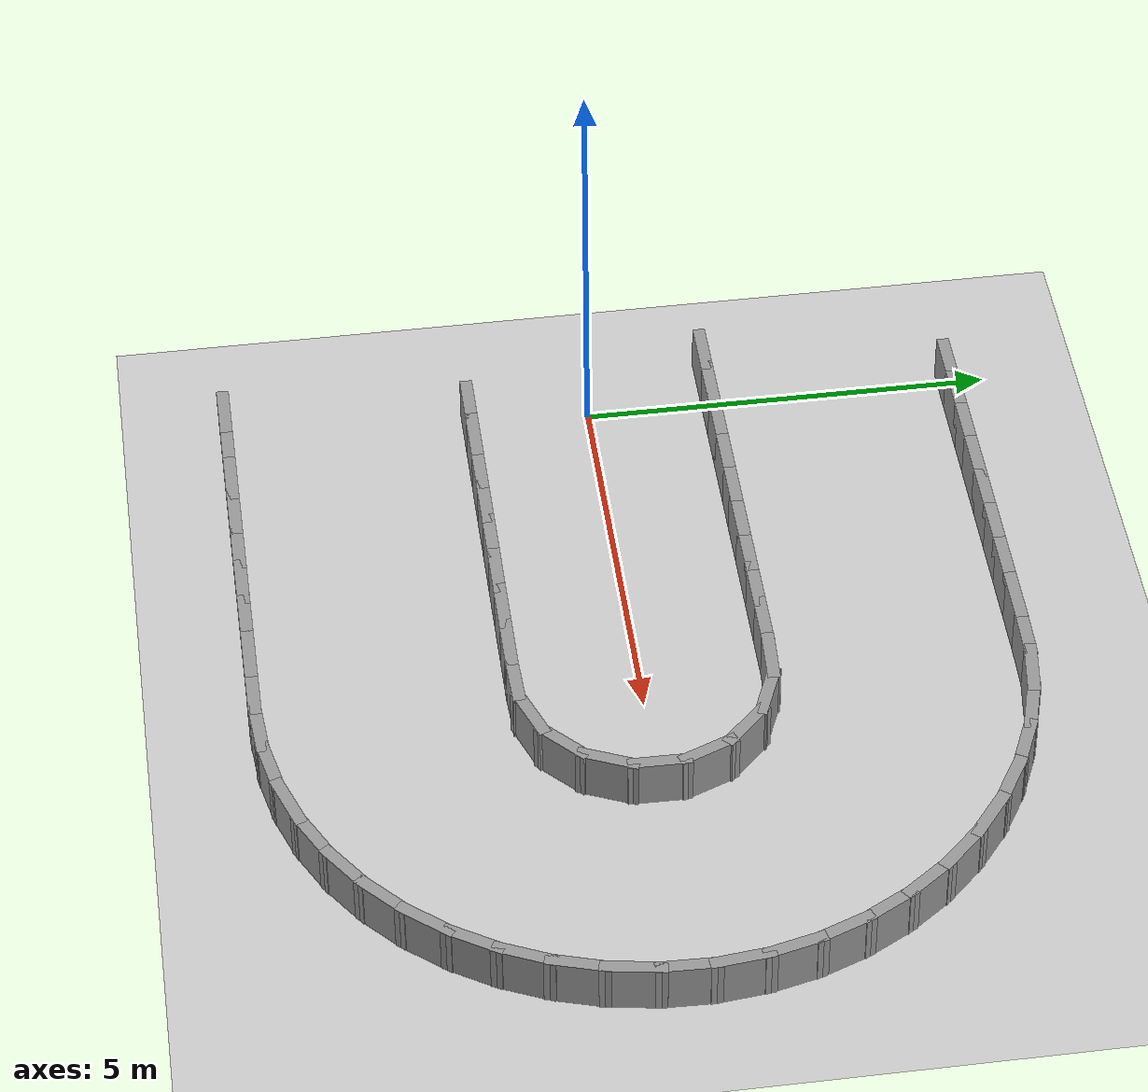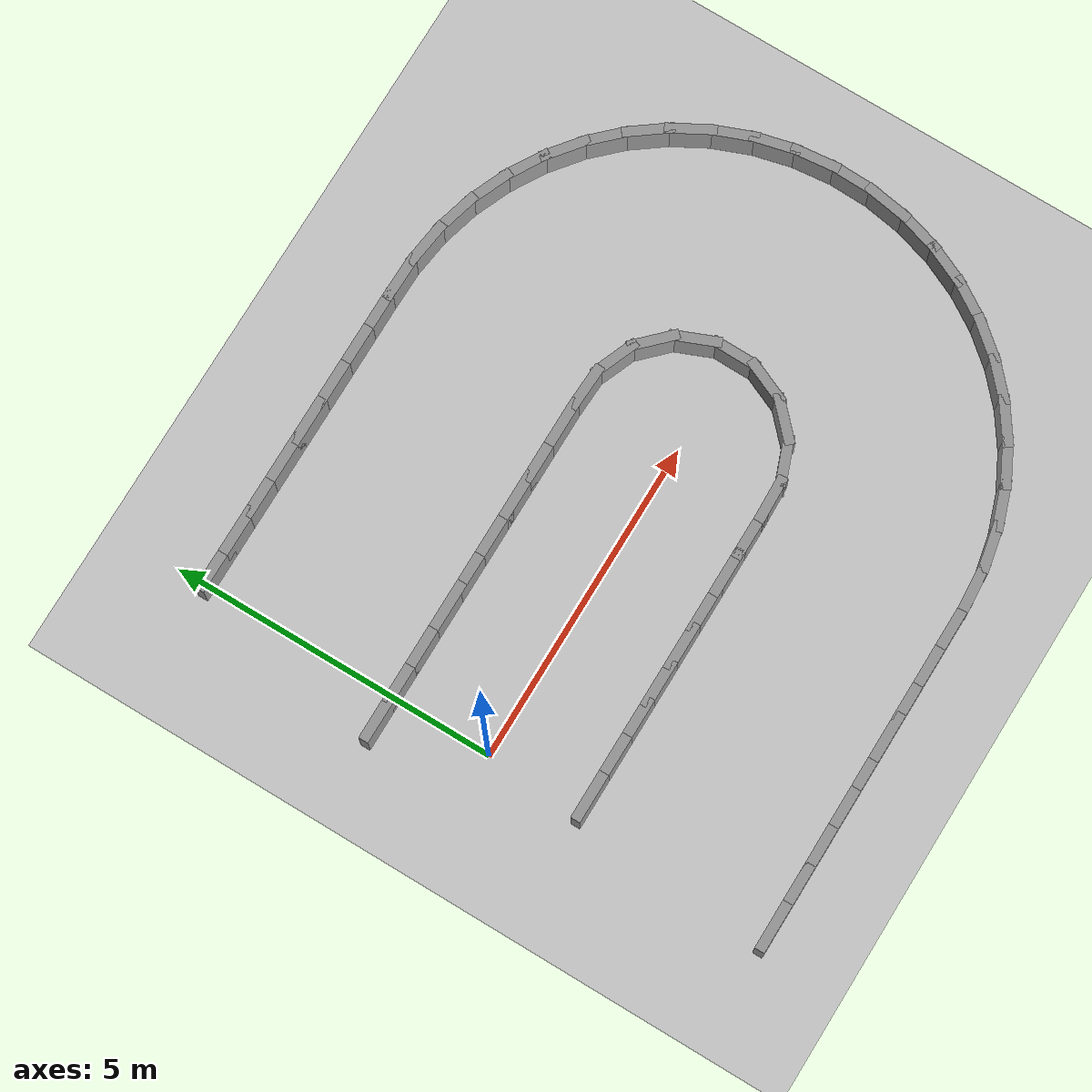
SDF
<sdf version="1.7">
 <world name="default">
  <model name="ground_plane">
   <static>1</static>
   <link name="link">
    <collision name="collision">
     <geometry><plane><normal>0 0 1</normal><size>100 100</size></plane></geometry>
     <surface><friction><ode><mu>100</mu><mu2>50</mu2></ode></friction></surface>
    </collision>
    <visual name="visual">
     <cast_shadows>0</cast_shadows>
     <geometry><plane><normal>0 0 1</normal><size>100 100</size></plane></geometry>
     <material>
      <script><uri>file://media/materials/scripts/gazebo.material</uri><name>Gazebo/Grey</name></script>
     </material>
    </visual>
   </link>
  </model>
  <model name="hairpin_safe">
   <link name="Wall_16">
    <collision name="Wall_16_Collision">
     <geometry><box><size>0.7500 0.1500 0.6000</size></box></geometry>
     <pose>0 0 0.3000 0 -0 0</pose>
    </collision>
    <visual name="Wall_16_Visual">
     <pose>0 0 0.3000 0 -0 0</pose>
     <geometry><box><size>0.7500 0.1500 0.6000</size></box></geometry>
     <material>
      <script><uri>file://media/materials/scripts/gazebo.material</uri><name>Gazebo/Grey</name></script>
      <ambient>1 1 1 1</ambient>
     </material>
    </visual>
    <pose>0.2000 4.5000 0 0 -0 0.00000</pose>
   </link>
   <link name="Wall_17">
    <collision name="Wall_17_Collision">
     <geometry><box><size>0.7500 0.1500 0.6000</size></box></geometry>
     <pose>0 0 0.3000 0 -0 0</pose>
    </collision>
    <visual name="Wall_17_Visual">
     <pose>0 0 0.3000 0 -0 0</pose>
     <geometry><box><size>0.7500 0.1500 0.6000</size></box></geometry>
     <material>
      <script><uri>file://media/materials/scripts/gazebo.material</uri><name>Gazebo/Grey</name></script>
      <ambient>1 1 1 1</ambient>
     </material>
    </visual>
    <pose>0.8000 4.5000 0 0 -0 0.00000</pose>
   </link>
   <link name="Wall_18">
    <collision name="Wall_18_Collision">
     <geometry><box><size>0.7500 0.1500 0.6000</size></box></geometry>
     <pose>0 0 0.3000 0 -0 0</pose>
    </collision>
    <visual name="Wall_18_Visual">
     <pose>0 0 0.3000 0 -0 0</pose>
     <geometry><box><size>0.7500 0.1500 0.6000</size></box></geometry>
     <material>
      <script><uri>file://media/materials/scripts/gazebo.material</uri><name>Gazebo/Grey</name></script>
      <ambient>1 1 1 1</ambient>
     </material>
    </visual>
    <pose>1.4000 4.5000 0 0 -0 0.00000</pose>
   </link>
   <link name="Wall_19">
    <collision name="Wall_19_Collision">
     <geometry><box><size>0.7500 0.1500 0.6000</size></box></geometry>
     <pose>0 0 0.3000 0 -0 0</pose>
    </collision>
    <visual name="Wall_19_Visual">
     <pose>0 0 0.3000 0 -0 0</pose>
     <geometry><box><size>0.7500 0.1500 0.6000</size></box></geometry>
     <material>
      <script><uri>file://media/materials/scripts/gazebo.material</uri><name>Gazebo/Grey</name></script>
      <ambient>1 1 1 1</ambient>
     </material>
    </visual>
    <pose>2.0000 4.5000 0 0 -0 0.00000</pose>
   </link>
   <link name="Wall_20">
    <collision name="Wall_20_Collision">
     <geometry><box><size>0.7500 0.1500 0.6000</size></box></geometry>
     <pose>0 0 0.3000 0 -0 0</pose>
    </collision>
    <visual name="Wall_20_Visual">
     <pose>0 0 0.3000 0 -0 0</pose>
     <geometry><box><size>0.7500 0.1500 0.6000</size></box></geometry>
     <material>
      <script><uri>file://media/materials/scripts/gazebo.material</uri><name>Gazebo/Grey</name></script>
      <ambient>1 1 1 1</ambient>
     </material>
    </visual>
    <pose>2.6000 4.5000 0 0 -0 0.00000</pose>
   </link>
   <link name="Wall_21">
    <collision name="Wall_21_Collision">
     <geometry><box><size>0.7500 0.1500 0.6000</size></box></geometry>
     <pose>0 0 0.3000 0 -0 0</pose>
    </collision>
    <visual name="Wall_21_Visual">
     <pose>0 0 0.3000 0 -0 0</pose>
     <geometry><box><size>0.7500 0.1500 0.6000</size></box></geometry>
     <material>
      <script><uri>file://media/materials/scripts/gazebo.material</uri><name>Gazebo/Grey</name></script>
      <ambient>1 1 1 1</ambient>
     </material>
    </visual>
    <pose>3.2000 4.5000 0 0 -0 0.00000</pose>
   </link>
   <link name="Wall_22">
    <collision name="Wall_22_Collision">
     <geometry><box><size>0.7500 0.1500 0.6000</size></box></geometry>
     <pose>0 0 0.3000 0 -0 0</pose>
    </collision>
    <visual name="Wall_22_Visual">
     <pose>0 0 0.3000 0 -0 0</pose>
     <geometry><box><size>0.7500 0.1500 0.6000</size></box></geometry>
     <material>
      <script><uri>file://media/materials/scripts/gazebo.material</uri><name>Gazebo/Grey</name></script>
      <ambient>1 1 1 1</ambient>
     </material>
    </visual>
    <pose>3.8000 4.5000 0 0 -0 0.00000</pose>
   </link>
   <link name="Wall_23">
    <collision name="Wall_23_Collision">
     <geometry><box><size>0.7500 0.1500 0.6000</size></box></geometry>
     <pose>0 0 0.3000 0 -0 0</pose>
    </collision>
    <visual name="Wall_23_Visual">
     <pose>0 0 0.3000 0 -0 0</pose>
     <geometry><box><size>0.7500 0.1500 0.6000</size></box></geometry>
     <material>
      <script><uri>file://media/materials/scripts/gazebo.material</uri><name>Gazebo/Grey</name></script>
      <ambient>1 1 1 1</ambient>
     </material>
    </visual>
    <pose>4.4000 4.5000 0 0 -0 0.00000</pose>
   </link>
   <link name="Wall_24">
    <collision name="Wall_24_Collision">
     <geometry><box><size>0.7499 0.1500 0.6000</size></box></geometry>
     <pose>0 0 0.3000 0 -0 0</pose>
    </collision>
    <visual name="Wall_24_Visual">
     <pose>0 0 0.3000 0 -0 0</pose>
     <geometry><box><size>0.7499 0.1500 0.6000</size></box></geometry>
     <material>
      <script><uri>file://media/materials/scripts/gazebo.material</uri><name>Gazebo/Grey</name></script>
      <ambient>1 1 1 1</ambient>
     </material>
    </visual>
    <pose>4.9999 4.4950 0 0 -0 -0.01683</pose>
   </link>
   <link name="Wall_25">
    <collision name="Wall_25_Collision">
     <geometry><box><size>0.7495 0.1500 0.6000</size></box></geometry>
     <pose>0 0 0.3000 0 -0 0</pose>
    </collision>
    <visual name="Wall_25_Visual">
     <pose>0 0 0.3000 0 -0 0</pose>
     <geometry><box><size>0.7495 0.1500 0.6000</size></box></geometry>
     <material>
      <script><uri>file://media/materials/scripts/gazebo.material</uri><name>Gazebo/Grey</name></script>
      <ambient>1 1 1 1</ambient>
     </material>
    </visual>
    <pose>5.5969 4.4500 0 0 -0 -0.13338</pose>
   </link>
   <link name="Wall_26">
    <collision name="Wall_26_Collision">
     <geometry><box><size>0.7495 0.1500 0.6000</size></box></geometry>
     <pose>0 0 0.3000 0 -0 0</pose>
    </collision>
    <visual name="Wall_26_Visual">
     <pose>0 0 0.3000 0 -0 0</pose>
     <geometry><box><size>0.7495 0.1500 0.6000</size></box></geometry>
     <material>
      <script><uri>file://media/materials/scripts/gazebo.material</uri><name>Gazebo/Grey</name></script>
      <ambient>1 1 1 1</ambient>
     </material>
    </visual>
    <pose>6.1832 4.3312 0 0 -0 -0.26656</pose>
   </link>
   <link name="Wall_27">
    <collision name="Wall_27_Collision">
     <geometry><box><size>0.7495 0.1500 0.6000</size></box></geometry>
     <pose>0 0 0.3000 0 -0 0</pose>
    </collision>
    <visual name="Wall_27_Visual">
     <pose>0 0 0.3000 0 -0 0</pose>
     <geometry><box><size>0.7495 0.1500 0.6000</size></box></geometry>
     <material>
      <script><uri>file://media/materials/scripts/gazebo.material</uri><name>Gazebo/Grey</name></script>
      <ambient>1 1 1 1</ambient>
     </material>
    </visual>
    <pose>6.7485 4.1355 0 0 -0 -0.40014</pose>
   </link>
   <link name="Wall_28">
    <collision name="Wall_28_Collision">
     <geometry><box><size>0.7496 0.1500 0.6000</size></box></geometry>
     <pose>0 0 0.3000 0 -0 0</pose>
    </collision>
    <visual name="Wall_28_Visual">
     <pose>0 0 0.3000 0 -0 0</pose>
     <geometry><box><size>0.7496 0.1500 0.6000</size></box></geometry>
     <material>
      <script><uri>file://media/materials/scripts/gazebo.material</uri><name>Gazebo/Grey</name></script>
      <ambient>1 1 1 1</ambient>
     </material>
    </visual>
    <pose>7.2827 3.8663 0 0 -0 -0.53312</pose>
   </link>
   <link name="Wall_29">
    <collision name="Wall_29_Collision">
     <geometry><box><size>0.7496 0.1500 0.6000</size></box></geometry>
     <pose>0 0 0.3000 0 -0 0</pose>
    </collision>
    <visual name="Wall_29_Visual">
     <pose>0 0 0.3000 0 -0 0</pose>
     <geometry><box><size>0.7496 0.1500 0.6000</size></box></geometry>
     <material>
      <script><uri>file://media/materials/scripts/gazebo.material</uri><name>Gazebo/Grey</name></script>
      <ambient>1 1 1 1</ambient>
     </material>
    </visual>
    <pose>7.7765 3.5286 0 0 -0 -0.66690</pose>
   </link>
   <link name="Wall_30">
    <collision name="Wall_30_Collision">
     <geometry><box><size>0.7495 0.1500 0.6000</size></box></geometry>
     <pose>0 0 0.3000 0 -0 0</pose>
    </collision>
    <visual name="Wall_30_Visual">
     <pose>0 0 0.3000 0 -0 0</pose>
     <geometry><box><size>0.7495 0.1500 0.6000</size></box></geometry>
     <material>
      <script><uri>file://media/materials/scripts/gazebo.material</uri><name>Gazebo/Grey</name></script>
      <ambient>1 1 1 1</ambient>
     </material>
    </visual>
    <pose>8.2209 3.1281 0 0 -0 -0.79986</pose>
   </link>
   <link name="Wall_31">
    <collision name="Wall_31_Collision">
     <geometry><box><size>0.7495 0.1500 0.6000</size></box></geometry>
     <pose>0 0 0.3000 0 -0 0</pose>
    </collision>
    <visual name="Wall_31_Visual">
     <pose>0 0 0.3000 0 -0 0</pose>
     <geometry><box><size>0.7495 0.1500 0.6000</size></box></geometry>
     <material>
      <script><uri>file://media/materials/scripts/gazebo.material</uri><name>Gazebo/Grey</name></script>
      <ambient>1 1 1 1</ambient>
     </material>
    </visual>
    <pose>8.6082 2.6722 0 0 -0 -0.93347</pose>
   </link>
   <link name="Wall_32">
    <collision name="Wall_32_Collision">
     <geometry><box><size>0.7495 0.1500 0.6000</size></box></geometry>
     <pose>0 0 0.3000 0 -0 0</pose>
    </collision>
    <visual name="Wall_32_Visual">
     <pose>0 0 0.3000 0 -0 0</pose>
     <geometry><box><size>0.7495 0.1500 0.6000</size></box></geometry>
     <material>
      <script><uri>file://media/materials/scripts/gazebo.material</uri><name>Gazebo/Grey</name></script>
      <ambient>1 1 1 1</ambient>
     </material>
    </visual>
    <pose>8.9314 2.1688 0 0 -0 -1.06662</pose>
   </link>
   <link name="Wall_33">
    <collision name="Wall_33_Collision">
     <geometry><box><size>0.7495 0.1500 0.6000</size></box></geometry>
     <pose>0 0 0.3000 0 -0 0</pose>
    </collision>
    <visual name="Wall_33_Visual">
     <pose>0 0 0.3000 0 -0 0</pose>
     <geometry><box><size>0.7495 0.1500 0.6000</size></box></geometry>
     <material>
      <script><uri>file://media/materials/scripts/gazebo.material</uri><name>Gazebo/Grey</name></script>
      <ambient>1 1 1 1</ambient>
     </material>
    </visual>
    <pose>9.1848 1.6269 0 0 -0 -1.20003</pose>
   </link>
   <link name="Wall_34">
    <collision name="Wall_34_Collision">
     <geometry><box><size>0.7495 0.1500 0.6000</size></box></geometry>
     <pose>0 0 0.3000 0 -0 0</pose>
    </collision>
    <visual name="Wall_34_Visual">
     <pose>0 0 0.3000 0 -0 0</pose>
     <geometry><box><size>0.7495 0.1500 0.6000</size></box></geometry>
     <material>
      <script><uri>file://media/materials/scripts/gazebo.material</uri><name>Gazebo/Grey</name></script>
      <ambient>1 1 1 1</ambient>
     </material>
    </visual>
    <pose>9.3639 1.0561 0 0 -0 -1.33338</pose>
   </link>
   <link name="Wall_35">
    <collision name="Wall_35_Collision">
     <geometry><box><size>0.7495 0.1500 0.6000</size></box></geometry>
     <pose>0 0 0.3000 0 -0 0</pose>
    </collision>
    <visual name="Wall_35_Visual">
     <pose>0 0 0.3000 0 -0 0</pose>
     <geometry><box><size>0.7495 0.1500 0.6000</size></box></geometry>
     <material>
      <script><uri>file://media/materials/scripts/gazebo.material</uri><name>Gazebo/Grey</name></script>
      <ambient>1 1 1 1</ambient>
     </material>
    </visual>
    <pose>9.4656 0.4666 0 0 -0 -1.46658</pose>
   </link>
   <link name="Wall_36">
    <collision name="Wall_36_Collision">
     <geometry><box><size>0.7495 0.1500 0.6000</size></box></geometry>
     <pose>0 0 0.3000 0 -0 0</pose>
    </collision>
    <visual name="Wall_36_Visual">
     <pose>0 0 0.3000 0 -0 0</pose>
     <geometry><box><size>0.7495 0.1500 0.6000</size></box></geometry>
     <material>
      <script><uri>file://media/materials/scripts/gazebo.material</uri><name>Gazebo/Grey</name></script>
      <ambient>1 1 1 1</ambient>
     </material>
    </visual>
    <pose>9.4880 -0.1312 0 0 -0 -1.60014</pose>
   </link>
   <link name="Wall_37">
    <collision name="Wall_37_Collision">
     <geometry><box><size>0.7496 0.1500 0.6000</size></box></geometry>
     <pose>0 0 0.3000 0 -0 0</pose>
    </collision>
    <visual name="Wall_37_Visual">
     <pose>0 0 0.3000 0 -0 0</pose>
     <geometry><box><size>0.7496 0.1500 0.6000</size></box></geometry>
     <material>
      <script><uri>file://media/materials/scripts/gazebo.material</uri><name>Gazebo/Grey</name></script>
      <ambient>1 1 1 1</ambient>
     </material>
    </visual>
    <pose>9.4307 -0.7267 0 0 -0 -1.73314</pose>
   </link>
   <link name="Wall_38">
    <collision name="Wall_38_Collision">
     <geometry><box><size>0.7496 0.1500 0.6000</size></box></geometry>
     <pose>0 0 0.3000 0 -0 0</pose>
    </collision>
    <visual name="Wall_38_Visual">
     <pose>0 0 0.3000 0 -0 0</pose>
     <geometry><box><size>0.7496 0.1500 0.6000</size></box></geometry>
     <material>
      <script><uri>file://media/materials/scripts/gazebo.material</uri><name>Gazebo/Grey</name></script>
      <ambient>1 1 1 1</ambient>
     </material>
    </visual>
    <pose>9.2948 -1.3092 0 0 -0 -1.86690</pose>
   </link>
   <link name="Wall_39">
    <collision name="Wall_39_Collision">
     <geometry><box><size>0.7495 0.1500 0.6000</size></box></geometry>
     <pose>0 0 0.3000 0 -0 0</pose>
    </collision>
    <visual name="Wall_39_Visual">
     <pose>0 0 0.3000 0 -0 0</pose>
     <geometry><box><size>0.7495 0.1500 0.6000</size></box></geometry>
     <material>
      <script><uri>file://media/materials/scripts/gazebo.material</uri><name>Gazebo/Grey</name></script>
      <ambient>1 1 1 1</ambient>
     </material>
    </visual>
    <pose>9.0826 -1.8686 0 0 -0 -1.99986</pose>
   </link>
   <link name="Wall_40">
    <collision name="Wall_40_Collision">
     <geometry><box><size>0.7495 0.1500 0.6000</size></box></geometry>
     <pose>0 0 0.3000 0 -0 0</pose>
    </collision>
    <visual name="Wall_40_Visual">
     <pose>0 0 0.3000 0 -0 0</pose>
     <geometry><box><size>0.7495 0.1500 0.6000</size></box></geometry>
     <material>
      <script><uri>file://media/materials/scripts/gazebo.material</uri><name>Gazebo/Grey</name></script>
      <ambient>1 1 1 1</ambient>
     </material>
    </visual>
    <pose>8.7980 -2.3947 0 0 -0 -2.13349</pose>
   </link>
   <link name="Wall_41">
    <collision name="Wall_41_Collision">
     <geometry><box><size>0.7495 0.1500 0.6000</size></box></geometry>
     <pose>0 0 0.3000 0 -0 0</pose>
    </collision>
    <visual name="Wall_41_Visual">
     <pose>0 0 0.3000 0 -0 0</pose>
     <geometry><box><size>0.7495 0.1500 0.6000</size></box></geometry>
     <material>
      <script><uri>file://media/materials/scripts/gazebo.material</uri><name>Gazebo/Grey</name></script>
      <ambient>1 1 1 1</ambient>
     </material>
    </visual>
    <pose>8.4459 -2.8783 0 0 -0 -2.26662</pose>
   </link>
   <link name="Wall_42">
    <collision name="Wall_42_Collision">
     <geometry><box><size>0.7495 0.1500 0.6000</size></box></geometry>
     <pose>0 0 0.3000 0 -0 0</pose>
    </collision>
    <visual name="Wall_42_Visual">
     <pose>0 0 0.3000 0 -0 0</pose>
     <geometry><box><size>0.7495 0.1500 0.6000</size></box></geometry>
     <material>
      <script><uri>file://media/materials/scripts/gazebo.material</uri><name>Gazebo/Grey</name></script>
      <ambient>1 1 1 1</ambient>
     </material>
    </visual>
    <pose>8.0327 -3.3109 0 0 -0 -2.40005</pose>
   </link>
   <link name="Wall_43">
    <collision name="Wall_43_Collision">
     <geometry><box><size>0.7495 0.1500 0.6000</size></box></geometry>
     <pose>0 0 0.3000 0 -0 0</pose>
    </collision>
    <visual name="Wall_43_Visual">
     <pose>0 0 0.3000 0 -0 0</pose>
     <geometry><box><size>0.7495 0.1500 0.6000</size></box></geometry>
     <material>
      <script><uri>file://media/materials/scripts/gazebo.material</uri><name>Gazebo/Grey</name></script>
      <ambient>1 1 1 1</ambient>
     </material>
    </visual>
    <pose>7.5656 -3.6847 0 0 -0 -2.53338</pose>
   </link>
   <link name="Wall_44">
    <collision name="Wall_44_Collision">
     <geometry><box><size>0.7495 0.1500 0.6000</size></box></geometry>
     <pose>0 0 0.3000 0 -0 0</pose>
    </collision>
    <visual name="Wall_44_Visual">
     <pose>0 0 0.3000 0 -0 0</pose>
     <geometry><box><size>0.7495 0.1500 0.6000</size></box></geometry>
     <material>
      <script><uri>file://media/materials/scripts/gazebo.material</uri><name>Gazebo/Grey</name></script>
      <ambient>1 1 1 1</ambient>
     </material>
    </visual>
    <pose>7.0530 -3.9931 0 0 -0 -2.66661</pose>
   </link>
   <link name="Wall_45">
    <collision name="Wall_45_Collision">
     <geometry><box><size>0.7495 0.1500 0.6000</size></box></geometry>
     <pose>0 0 0.3000 0 -0 0</pose>
    </collision>
    <visual name="Wall_45_Visual">
     <pose>0 0 0.3000 0 -0 0</pose>
     <geometry><box><size>0.7495 0.1500 0.6000</size></box></geometry>
     <material>
      <script><uri>file://media/materials/scripts/gazebo.material</uri><name>Gazebo/Grey</name></script>
      <ambient>1 1 1 1</ambient>
     </material>
    </visual>
    <pose>6.5039 -4.2305 0 0 -0 -2.80014</pose>
   </link>
   <link name="Wall_46">
    <collision name="Wall_46_Collision">
     <geometry><box><size>0.7496 0.1500 0.6000</size></box></geometry>
     <pose>0 0 0.3000 0 -0 0</pose>
    </collision>
    <visual name="Wall_46_Visual">
     <pose>0 0 0.3000 0 -0 0</pose>
     <geometry><box><size>0.7496 0.1500 0.6000</size></box></geometry>
     <material>
      <script><uri>file://media/materials/scripts/gazebo.material</uri><name>Gazebo/Grey</name></script>
      <ambient>1 1 1 1</ambient>
     </material>
    </visual>
    <pose>5.9282 -4.3929 0 0 -0 -2.93317</pose>
   </link>
   <link name="Wall_47">
    <collision name="Wall_47_Collision">
     <geometry><box><size>0.7496 0.1500 0.6000</size></box></geometry>
     <pose>0 0 0.3000 0 -0 0</pose>
    </collision>
    <visual name="Wall_47_Visual">
     <pose>0 0 0.3000 0 -0 0</pose>
     <geometry><box><size>0.7496 0.1500 0.6000</size></box></geometry>
     <material>
      <script><uri>file://media/materials/scripts/gazebo.material</uri><name>Gazebo/Grey</name></script>
      <ambient>1 1 1 1</ambient>
     </material>
    </visual>
    <pose>5.3360 -4.4774 0 0 -0 -3.06686</pose>
   </link>
   <link name="Wall_48">
    <collision name="Wall_48_Collision">
     <geometry><box><size>0.7500 0.1500 0.6000</size></box></geometry>
     <pose>0 0 0.3000 0 -0 0</pose>
    </collision>
    <visual name="Wall_48_Visual">
     <pose>0 0 0.3000 0 -0 0</pose>
     <geometry><box><size>0.7500 0.1500 0.6000</size></box></geometry>
     <material>
      <script><uri>file://media/materials/scripts/gazebo.material</uri><name>Gazebo/Grey</name></script>
      <ambient>1 1 1 1</ambient>
     </material>
    </visual>
    <pose>4.7370 -4.4999 0 0 -0 -3.14115</pose>
   </link>
   <link name="Wall_49">
    <collision name="Wall_49_Collision">
     <geometry><box><size>0.7500 0.1500 0.6000</size></box></geometry>
     <pose>0 0 0.3000 0 -0 0</pose>
    </collision>
    <visual name="Wall_49_Visual">
     <pose>0 0 0.3000 0 -0 0</pose>
     <geometry><box><size>0.7500 0.1500 0.6000</size></box></geometry>
     <material>
      <script><uri>file://media/materials/scripts/gazebo.material</uri><name>Gazebo/Grey</name></script>
      <ambient>1 1 1 1</ambient>
     </material>
    </visual>
    <pose>4.1370 -4.5000 0 0 -0 3.14159</pose>
   </link>
   <link name="Wall_50">
    <collision name="Wall_50_Collision">
     <geometry><box><size>0.7500 0.1500 0.6000</size></box></geometry>
     <pose>0 0 0.3000 0 -0 0</pose>
    </collision>
    <visual name="Wall_50_Visual">
     <pose>0 0 0.3000 0 -0 0</pose>
     <geometry><box><size>0.7500 0.1500 0.6000</size></box></geometry>
     <material>
      <script><uri>file://media/materials/scripts/gazebo.material</uri><name>Gazebo/Grey</name></script>
      <ambient>1 1 1 1</ambient>
     </material>
    </visual>
    <pose>3.5370 -4.5000 0 0 -0 3.14159</pose>
   </link>
   <link name="Wall_51">
    <collision name="Wall_51_Collision">
     <geometry><box><size>0.7500 0.1500 0.6000</size></box></geometry>
     <pose>0 0 0.3000 0 -0 0</pose>
    </collision>
    <visual name="Wall_51_Visual">
     <pose>0 0 0.3000 0 -0 0</pose>
     <geometry><box><size>0.7500 0.1500 0.6000</size></box></geometry>
     <material>
      <script><uri>file://media/materials/scripts/gazebo.material</uri><name>Gazebo/Grey</name></script>
      <ambient>1 1 1 1</ambient>
     </material>
    </visual>
    <pose>2.9370 -4.5000 0 0 -0 3.14159</pose>
   </link>
   <link name="Wall_52">
    <collision name="Wall_52_Collision">
     <geometry><box><size>0.7500 0.1500 0.6000</size></box></geometry>
     <pose>0 0 0.3000 0 -0 0</pose>
    </collision>
    <visual name="Wall_52_Visual">
     <pose>0 0 0.3000 0 -0 0</pose>
     <geometry><box><size>0.7500 0.1500 0.6000</size></box></geometry>
     <material>
      <script><uri>file://media/materials/scripts/gazebo.material</uri><name>Gazebo/Grey</name></script>
      <ambient>1 1 1 1</ambient>
     </material>
    </visual>
    <pose>2.3370 -4.5000 0 0 -0 3.14159</pose>
   </link>
   <link name="Wall_53">
    <collision name="Wall_53_Collision">
     <geometry><box><size>0.7500 0.1500 0.6000</size></box></geometry>
     <pose>0 0 0.3000 0 -0 0</pose>
    </collision>
    <visual name="Wall_53_Visual">
     <pose>0 0 0.3000 0 -0 0</pose>
     <geometry><box><size>0.7500 0.1500 0.6000</size></box></geometry>
     <material>
      <script><uri>file://media/materials/scripts/gazebo.material</uri><name>Gazebo/Grey</name></script>
      <ambient>1 1 1 1</ambient>
     </material>
    </visual>
    <pose>1.7370 -4.5000 0 0 -0 3.14159</pose>
   </link>
   <link name="Wall_54">
    <collision name="Wall_54_Collision">
     <geometry><box><size>0.7500 0.1500 0.6000</size></box></geometry>
     <pose>0 0 0.3000 0 -0 0</pose>
    </collision>
    <visual name="Wall_54_Visual">
     <pose>0 0 0.3000 0 -0 0</pose>
     <geometry><box><size>0.7500 0.1500 0.6000</size></box></geometry>
     <material>
      <script><uri>file://media/materials/scripts/gazebo.material</uri><name>Gazebo/Grey</name></script>
      <ambient>1 1 1 1</ambient>
     </material>
    </visual>
    <pose>1.1370 -4.5000 0 0 -0 3.14159</pose>
   </link>
   <link name="Wall_55">
    <collision name="Wall_55_Collision">
     <geometry><box><size>0.7500 0.1500 0.6000</size></box></geometry>
     <pose>0 0 0.3000 0 -0 0</pose>
    </collision>
    <visual name="Wall_55_Visual">
     <pose>0 0 0.3000 0 -0 0</pose>
     <geometry><box><size>0.7500 0.1500 0.6000</size></box></geometry>
     <material>
      <script><uri>file://media/materials/scripts/gazebo.material</uri><name>Gazebo/Grey</name></script>
      <ambient>1 1 1 1</ambient>
     </material>
    </visual>
    <pose>0.5370 -4.5000 0 0 -0 3.14159</pose>
   </link>
   <link name="Wall_56">
    <collision name="Wall_56_Collision">
     <geometry><box><size>0.7500 0.1500 0.6000</size></box></geometry>
     <pose>0 0 0.3000 0 -0 0</pose>
    </collision>
    <visual name="Wall_56_Visual">
     <pose>0 0 0.3000 0 -0 0</pose>
     <geometry><box><size>0.7500 0.1500 0.6000</size></box></geometry>
     <material>
      <script><uri>file://media/materials/scripts/gazebo.material</uri><name>Gazebo/Grey</name></script>
      <ambient>1 1 1 1</ambient>
     </material>
    </visual>
    <pose>-0.0630 -4.5000 0 0 -0 3.14159</pose>
   </link>
   <link name="Wall_88">
    <collision name="Wall_88_Collision">
     <geometry><box><size>0.7500 0.1500 0.6000</size></box></geometry>
     <pose>0 0 0.3000 0 -0 0</pose>
    </collision>
    <visual name="Wall_88_Visual">
     <pose>0 0 0.3000 0 -0 0</pose>
     <geometry><box><size>0.7500 0.1500 0.6000</size></box></geometry>
     <material>
      <script><uri>file://media/materials/scripts/gazebo.material</uri><name>Gazebo/Grey</name></script>
      <ambient>1 1 1 1</ambient>
     </material>
    </visual>
    <pose>-0.4000 1.5000 0 0 -0 0.00000</pose>
   </link>
   <link name="Wall_89">
    <collision name="Wall_89_Collision">
     <geometry><box><size>0.7500 0.1500 0.6000</size></box></geometry>
     <pose>0 0 0.3000 0 -0 0</pose>
    </collision>
    <visual name="Wall_89_Visual">
     <pose>0 0 0.3000 0 -0 0</pose>
     <geometry><box><size>0.7500 0.1500 0.6000</size></box></geometry>
     <material>
      <script><uri>file://media/materials/scripts/gazebo.material</uri><name>Gazebo/Grey</name></script>
      <ambient>1 1 1 1</ambient>
     </material>
    </visual>
    <pose>0.2000 1.5000 0 0 -0 0.00000</pose>
   </link>
   <link name="Wall_90">
    <collision name="Wall_90_Collision">
     <geometry><box><size>0.7500 0.1500 0.6000</size></box></geometry>
     <pose>0 0 0.3000 0 -0 0</pose>
    </collision>
    <visual name="Wall_90_Visual">
     <pose>0 0 0.3000 0 -0 0</pose>
     <geometry><box><size>0.7500 0.1500 0.6000</size></box></geometry>
     <material>
      <script><uri>file://media/materials/scripts/gazebo.material</uri><name>Gazebo/Grey</name></script>
      <ambient>1 1 1 1</ambient>
     </material>
    </visual>
    <pose>0.8000 1.5000 0 0 -0 0.00000</pose>
   </link>
   <link name="Wall_91">
    <collision name="Wall_91_Collision">
     <geometry><box><size>0.7500 0.1500 0.6000</size></box></geometry>
     <pose>0 0 0.3000 0 -0 0</pose>
    </collision>
    <visual name="Wall_91_Visual">
     <pose>0 0 0.3000 0 -0 0</pose>
     <geometry><box><size>0.7500 0.1500 0.6000</size></box></geometry>
     <material>
      <script><uri>file://media/materials/scripts/gazebo.material</uri><name>Gazebo/Grey</name></script>
      <ambient>1 1 1 1</ambient>
     </material>
    </visual>
    <pose>1.4000 1.5000 0 0 -0 0.00000</pose>
   </link>
   <link name="Wall_92">
    <collision name="Wall_92_Collision">
     <geometry><box><size>0.7500 0.1500 0.6000</size></box></geometry>
     <pose>0 0 0.3000 0 -0 0</pose>
    </collision>
    <visual name="Wall_92_Visual">
     <pose>0 0 0.3000 0 -0 0</pose>
     <geometry><box><size>0.7500 0.1500 0.6000</size></box></geometry>
     <material>
      <script><uri>file://media/materials/scripts/gazebo.material</uri><name>Gazebo/Grey</name></script>
      <ambient>1 1 1 1</ambient>
     </material>
    </visual>
    <pose>2.0000 1.5000 0 0 -0 0.00000</pose>
   </link>
   <link name="Wall_93">
    <collision name="Wall_93_Collision">
     <geometry><box><size>0.7500 0.1500 0.6000</size></box></geometry>
     <pose>0 0 0.3000 0 -0 0</pose>
    </collision>
    <visual name="Wall_93_Visual">
     <pose>0 0 0.3000 0 -0 0</pose>
     <geometry><box><size>0.7500 0.1500 0.6000</size></box></geometry>
     <material>
      <script><uri>file://media/materials/scripts/gazebo.material</uri><name>Gazebo/Grey</name></script>
      <ambient>1 1 1 1</ambient>
     </material>
    </visual>
    <pose>2.6000 1.5000 0 0 -0 0.00000</pose>
   </link>
   <link name="Wall_94">
    <collision name="Wall_94_Collision">
     <geometry><box><size>0.7500 0.1500 0.6000</size></box></geometry>
     <pose>0 0 0.3000 0 -0 0</pose>
    </collision>
    <visual name="Wall_94_Visual">
     <pose>0 0 0.3000 0 -0 0</pose>
     <geometry><box><size>0.7500 0.1500 0.6000</size></box></geometry>
     <material>
      <script><uri>file://media/materials/scripts/gazebo.material</uri><name>Gazebo/Grey</name></script>
      <ambient>1 1 1 1</ambient>
     </material>
    </visual>
    <pose>3.2000 1.5000 0 0 -0 0.00000</pose>
   </link>
   <link name="Wall_95">
    <collision name="Wall_95_Collision">
     <geometry><box><size>0.7500 0.1500 0.6000</size></box></geometry>
     <pose>0 0 0.3000 0 -0 0</pose>
    </collision>
    <visual name="Wall_95_Visual">
     <pose>0 0 0.3000 0 -0 0</pose>
     <geometry><box><size>0.7500 0.1500 0.6000</size></box></geometry>
     <material>
      <script><uri>file://media/materials/scripts/gazebo.material</uri><name>Gazebo/Grey</name></script>
      <ambient>1 1 1 1</ambient>
     </material>
    </visual>
    <pose>3.8000 1.5000 0 0 -0 0.00000</pose>
   </link>
   <link name="Wall_96">
    <collision name="Wall_96_Collision">
     <geometry><box><size>0.7500 0.1500 0.6000</size></box></geometry>
     <pose>0 0 0.3000 0 -0 0</pose>
    </collision>
    <visual name="Wall_96_Visual">
     <pose>0 0 0.3000 0 -0 0</pose>
     <geometry><box><size>0.7500 0.1500 0.6000</size></box></geometry>
     <material>
      <script><uri>file://media/materials/scripts/gazebo.material</uri><name>Gazebo/Grey</name></script>
      <ambient>1 1 1 1</ambient>
     </material>
    </visual>
    <pose>4.4000 1.5000 0 0 -0 0.00000</pose>
   </link>
   <link name="Wall_97">
    <collision name="Wall_97_Collision">
     <geometry><box><size>0.7253 0.1500 0.6000</size></box></geometry>
     <pose>0 0 0.3000 0 -0 0</pose>
    </collision>
    <visual name="Wall_97_Visual">
     <pose>0 0 0.3000 0 -0 0</pose>
     <geometry><box><size>0.7253 0.1500 0.6000</size></box></geometry>
     <material>
      <script><uri>file://media/materials/scripts/gazebo.material</uri><name>Gazebo/Grey</name></script>
      <ambient>1 1 1 1</ambient>
     </material>
    </visual>
    <pose>4.9874 1.4873 0 0 -0 -0.04420</pose>
   </link>
   <link name="Wall_98">
    <collision name="Wall_98_Collision">
     <geometry><box><size>0.7460 0.1500 0.6000</size></box></geometry>
     <pose>0 0 0.3000 0 -0 0</pose>
    </collision>
    <visual name="Wall_98_Visual">
     <pose>0 0 0.3000 0 -0 0</pose>
     <geometry><box><size>0.7460 0.1500 0.6000</size></box></geometry>
     <material>
      <script><uri>file://media/materials/scripts/gazebo.material</uri><name>Gazebo/Grey</name></script>
      <ambient>1 1 1 1</ambient>
     </material>
    </visual>
    <pose>5.5510 1.3629 0 0 -0 -0.38415</pose>
   </link>
   <link name="Wall_99">
    <collision name="Wall_99_Collision">
     <geometry><box><size>0.7460 0.1500 0.6000</size></box></geometry>
     <pose>0 0 0.3000 0 -0 0</pose>
    </collision>
    <visual name="Wall_99_Visual">
     <pose>0 0 0.3000 0 -0 0</pose>
     <geometry><box><size>0.7460 0.1500 0.6000</size></box></geometry>
     <material>
      <script><uri>file://media/materials/scripts/gazebo.material</uri><name>Gazebo/Grey</name></script>
      <ambient>1 1 1 1</ambient>
     </material>
    </visual>
    <pose>6.0383 1.0407 0 0 -0 -0.78429</pose>
   </link>
   <link name="Wall_100">
    <collision name="Wall_100_Collision">
     <geometry><box><size>0.7460 0.1500 0.6000</size></box></geometry>
     <pose>0 0 0.3000 0 -0 0</pose>
    </collision>
    <visual name="Wall_100_Visual">
     <pose>0 0 0.3000 0 -0 0</pose>
     <geometry><box><size>0.7460 0.1500 0.6000</size></box></geometry>
     <material>
      <script><uri>file://media/materials/scripts/gazebo.material</uri><name>Gazebo/Grey</name></script>
      <ambient>1 1 1 1</ambient>
     </material>
    </visual>
    <pose>6.3616 0.5542 0 0 -0 -1.18422</pose>
   </link>
   <link name="Wall_101">
    <collision name="Wall_101_Collision">
     <geometry><box><size>0.7460 0.1500 0.6000</size></box></geometry>
     <pose>0 0 0.3000 0 -0 0</pose>
    </collision>
    <visual name="Wall_101_Visual">
     <pose>0 0 0.3000 0 -0 0</pose>
     <geometry><box><size>0.7460 0.1500 0.6000</size></box></geometry>
     <material>
      <script><uri>file://media/materials/scripts/gazebo.material</uri><name>Gazebo/Grey</name></script>
      <ambient>1 1 1 1</ambient>
     </material>
    </visual>
    <pose>6.4699 -0.0198 0 0 -0 -1.58417</pose>
   </link>
   <link name="Wall_102">
    <collision name="Wall_102_Collision">
     <geometry><box><size>0.7460 0.1500 0.6000</size></box></geometry>
     <pose>0 0 0.3000 0 -0 0</pose>
    </collision>
    <visual name="Wall_102_Visual">
     <pose>0 0 0.3000 0 -0 0</pose>
     <geometry><box><size>0.7460 0.1500 0.6000</size></box></geometry>
     <material>
      <script><uri>file://media/materials/scripts/gazebo.material</uri><name>Gazebo/Grey</name></script>
      <ambient>1 1 1 1</ambient>
     </material>
    </visual>
    <pose>6.3462 -0.5906 0 0 -0 -1.98430</pose>
   </link>
   <link name="Wall_103">
    <collision name="Wall_103_Collision">
     <geometry><box><size>0.7460 0.1500 0.6000</size></box></geometry>
     <pose>0 0 0.3000 0 -0 0</pose>
    </collision>
    <visual name="Wall_103_Visual">
     <pose>0 0 0.3000 0 -0 0</pose>
     <geometry><box><size>0.7460 0.1500 0.6000</size></box></geometry>
     <material>
      <script><uri>file://media/materials/scripts/gazebo.material</uri><name>Gazebo/Grey</name></script>
      <ambient>1 1 1 1</ambient>
     </material>
    </visual>
    <pose>6.0099 -1.0682 0 0 -0 -2.38423</pose>
   </link>
   <link name="Wall_104">
    <collision name="Wall_104_Collision">
     <geometry><box><size>0.7460 0.1500 0.6000</size></box></geometry>
     <pose>0 0 0.3000 0 -0 0</pose>
    </collision>
    <visual name="Wall_104_Visual">
     <pose>0 0 0.3000 0 -0 0</pose>
     <geometry><box><size>0.7460 0.1500 0.6000</size></box></geometry>
     <material>
      <script><uri>file://media/materials/scripts/gazebo.material</uri><name>Gazebo/Grey</name></script>
      <ambient>1 1 1 1</ambient>
     </material>
    </visual>
    <pose>5.5142 -1.3772 0 0 -0 -2.78419</pose>
   </link>
   <link name="Wall_105">
    <collision name="Wall_105_Collision">
     <geometry><box><size>0.7256 0.1500 0.6000</size></box></geometry>
     <pose>0 0 0.3000 0 -0 0</pose>
    </collision>
    <visual name="Wall_105_Visual">
     <pose>0 0 0.3000 0 -0 0</pose>
     <geometry><box><size>0.7256 0.1500 0.6000</size></box></geometry>
     <material>
      <script><uri>file://media/materials/scripts/gazebo.material</uri><name>Gazebo/Grey</name></script>
      <ambient>1 1 1 1</ambient>
     </material>
    </visual>
    <pose>4.9474 -1.4907 0 0 -0 -3.10939</pose>
   </link>
   <link name="Wall_106">
    <collision name="Wall_106_Collision">
     <geometry><box><size>0.7500 0.1500 0.6000</size></box></geometry>
     <pose>0 0 0.3000 0 -0 0</pose>
    </collision>
    <visual name="Wall_106_Visual">
     <pose>0 0 0.3000 0 -0 0</pose>
     <geometry><box><size>0.7500 0.1500 0.6000</size></box></geometry>
     <material>
      <script><uri>file://media/materials/scripts/gazebo.material</uri><name>Gazebo/Grey</name></script>
      <ambient>1 1 1 1</ambient>
     </material>
    </visual>
    <pose>4.3597 -1.5000 0 0 -0 3.14159</pose>
   </link>
   <link name="Wall_107">
    <collision name="Wall_107_Collision">
     <geometry><box><size>0.7500 0.1500 0.6000</size></box></geometry>
     <pose>0 0 0.3000 0 -0 0</pose>
    </collision>
    <visual name="Wall_107_Visual">
     <pose>0 0 0.3000 0 -0 0</pose>
     <geometry><box><size>0.7500 0.1500 0.6000</size></box></geometry>
     <material>
      <script><uri>file://media/materials/scripts/gazebo.material</uri><name>Gazebo/Grey</name></script>
      <ambient>1 1 1 1</ambient>
     </material>
    </visual>
    <pose>3.7597 -1.5000 0 0 -0 3.14159</pose>
   </link>
   <link name="Wall_108">
    <collision name="Wall_108_Collision">
     <geometry><box><size>0.7500 0.1500 0.6000</size></box></geometry>
     <pose>0 0 0.3000 0 -0 0</pose>
    </collision>
    <visual name="Wall_108_Visual">
     <pose>0 0 0.3000 0 -0 0</pose>
     <geometry><box><size>0.7500 0.1500 0.6000</size></box></geometry>
     <material>
      <script><uri>file://media/materials/scripts/gazebo.material</uri><name>Gazebo/Grey</name></script>
      <ambient>1 1 1 1</ambient>
     </material>
    </visual>
    <pose>3.1597 -1.5000 0 0 -0 3.14159</pose>
   </link>
   <link name="Wall_109">
    <collision name="Wall_109_Collision">
     <geometry><box><size>0.7500 0.1500 0.6000</size></box></geometry>
     <pose>0 0 0.3000 0 -0 0</pose>
    </collision>
    <visual name="Wall_109_Visual">
     <pose>0 0 0.3000 0 -0 0</pose>
     <geometry><box><size>0.7500 0.1500 0.6000</size></box></geometry>
     <material>
      <script><uri>file://media/materials/scripts/gazebo.material</uri><name>Gazebo/Grey</name></script>
      <ambient>1 1 1 1</ambient>
     </material>
    </visual>
    <pose>2.5597 -1.5000 0 0 -0 3.14159</pose>
   </link>
   <link name="Wall_110">
    <collision name="Wall_110_Collision">
     <geometry><box><size>0.7500 0.1500 0.6000</size></box></geometry>
     <pose>0 0 0.3000 0 -0 0</pose>
    </collision>
    <visual name="Wall_110_Visual">
     <pose>0 0 0.3000 0 -0 0</pose>
     <geometry><box><size>0.7500 0.1500 0.6000</size></box></geometry>
     <material>
      <script><uri>file://media/materials/scripts/gazebo.material</uri><name>Gazebo/Grey</name></script>
      <ambient>1 1 1 1</ambient>
     </material>
    </visual>
    <pose>1.9597 -1.5000 0 0 -0 3.14159</pose>
   </link>
   <link name="Wall_111">
    <collision name="Wall_111_Collision">
     <geometry><box><size>0.7500 0.1500 0.6000</size></box></geometry>
     <pose>0 0 0.3000 0 -0 0</pose>
    </collision>
    <visual name="Wall_111_Visual">
     <pose>0 0 0.3000 0 -0 0</pose>
     <geometry><box><size>0.7500 0.1500 0.6000</size></box></geometry>
     <material>
      <script><uri>file://media/materials/scripts/gazebo.material</uri><name>Gazebo/Grey</name></script>
      <ambient>1 1 1 1</ambient>
     </material>
    </visual>
    <pose>1.3597 -1.5000 0 0 -0 3.14159</pose>
   </link>
   <link name="Wall_112">
    <collision name="Wall_112_Collision">
     <geometry><box><size>0.7500 0.1500 0.6000</size></box></geometry>
     <pose>0 0 0.3000 0 -0 0</pose>
    </collision>
    <visual name="Wall_112_Visual">
     <pose>0 0 0.3000 0 -0 0</pose>
     <geometry><box><size>0.7500 0.1500 0.6000</size></box></geometry>
     <material>
      <script><uri>file://media/materials/scripts/gazebo.material</uri><name>Gazebo/Grey</name></script>
      <ambient>1 1 1 1</ambient>
     </material>
    </visual>
    <pose>0.7597 -1.5000 0 0 -0 3.14159</pose>
   </link>
   <link name="Wall_113">
    <collision name="Wall_113_Collision">
     <geometry><box><size>0.7500 0.1500 0.6000</size></box></geometry>
     <pose>0 0 0.3000 0 -0 0</pose>
    </collision>
    <visual name="Wall_113_Visual">
     <pose>0 0 0.3000 0 -0 0</pose>
     <geometry><box><size>0.7500 0.1500 0.6000</size></box></geometry>
     <material>
      <script><uri>file://media/materials/scripts/gazebo.material</uri><name>Gazebo/Grey</name></script>
      <ambient>1 1 1 1</ambient>
     </material>
    </visual>
    <pose>0.1597 -1.5000 0 0 -0 3.14159</pose>
   </link>
   <static>1</static>
  </model>
 </world>
</sdf>
